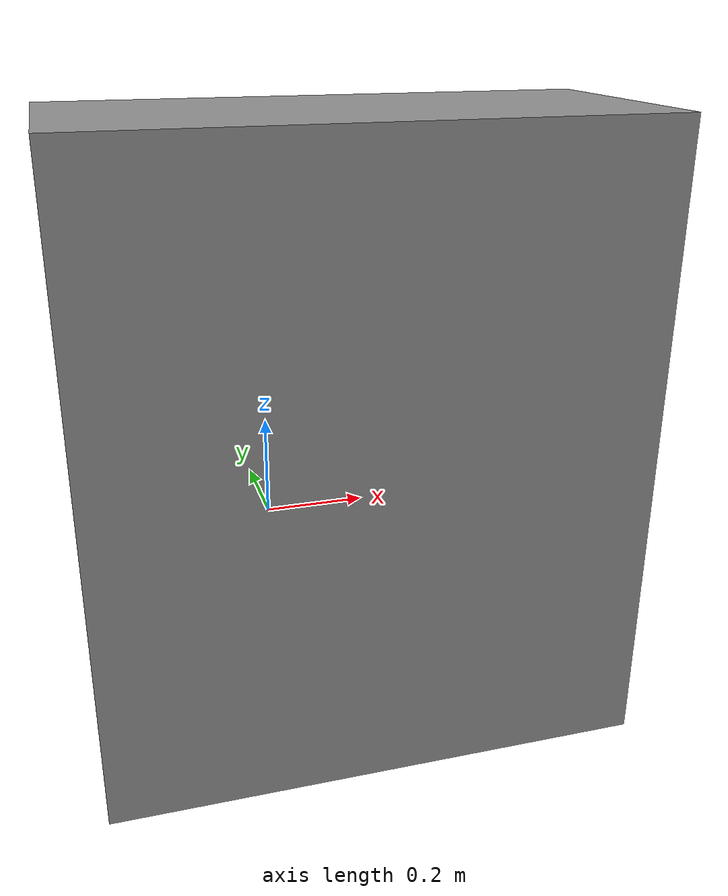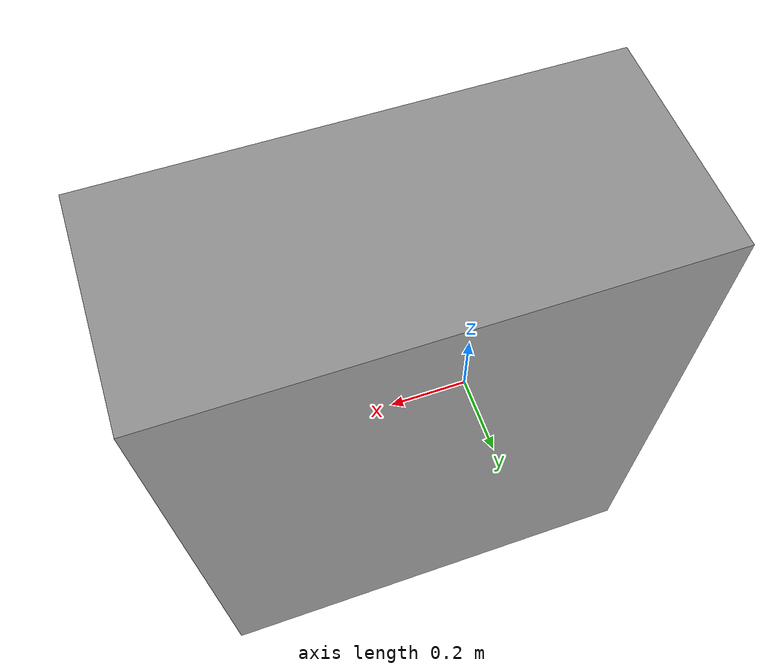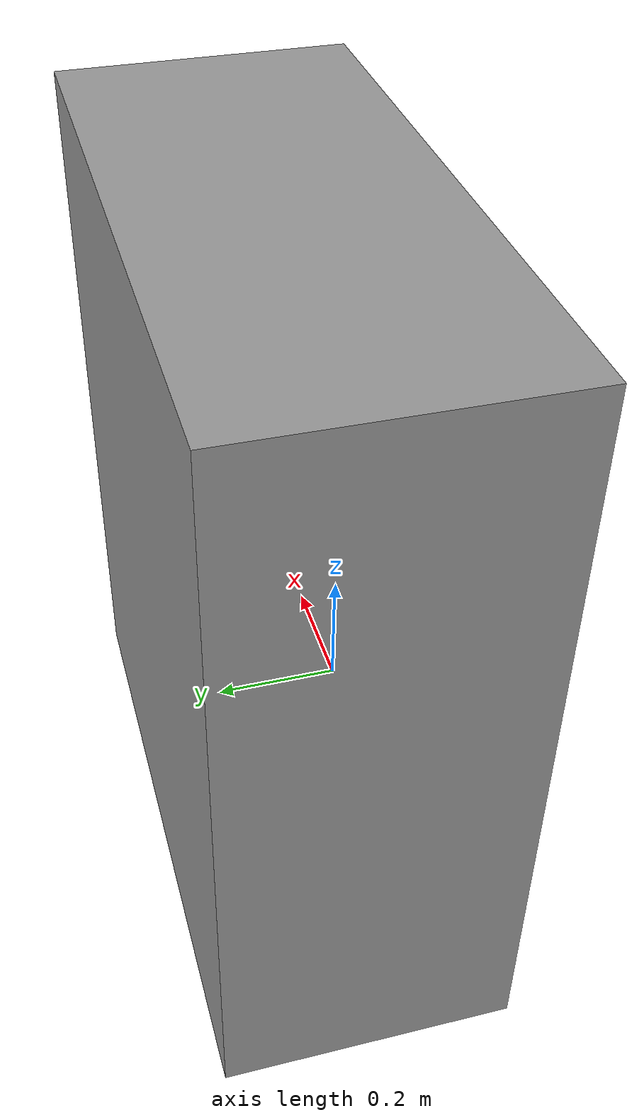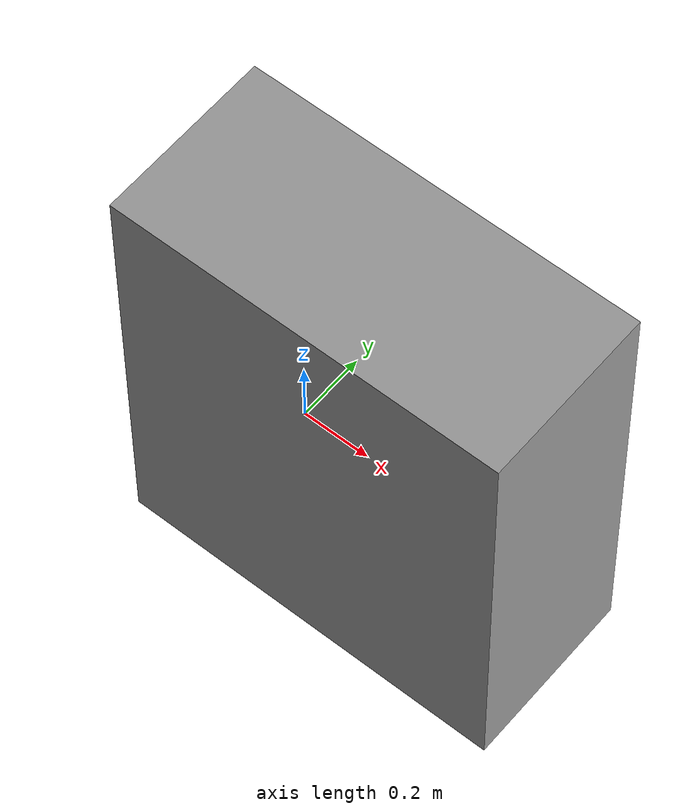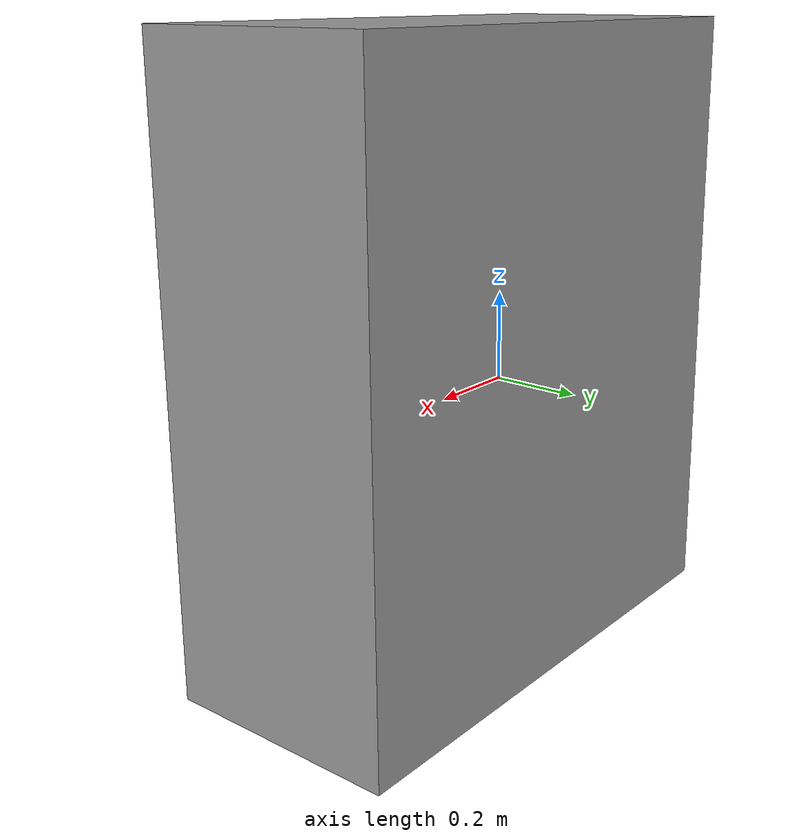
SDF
<?xml version='1.0'?>
<sdf version='1.6'>
  <model name='crate_0'>
    <link name='link'>
      <inertial>
        <mass>0.804287</mass>
        <inertia>
          <ixx>0.138555</ixx>
          <ixy>0</ixy>
          <ixz>0</ixz>
          <iyy>0.209043</iyy>
          <iyz>0</iyz>
          <izz>0.106977</izz>
        </inertia>
        <pose frame=''>0 0 0 0 -0 0</pose>
      </inertial>
      <self_collide>0</self_collide>
      <enable_wind>0</enable_wind>
      <kinematic>0</kinematic>
      <pose frame=''>0.186991 0.034424 0.127035 0 -0 0</pose>
      <visual name='visual'>
        <geometry>
          <box>
            <size>1.1506 0.52174 1.33979</size>
          </box>
        </geometry>
        <material>
          <script>
            <name>Gazebo/Grey</name>
            <uri>file://media/materials/scripts/gazebo.material</uri>
          </script>
          <emissive>0 0 0 1</emissive>
        </material>
        <pose frame=''>0 0 0 0 -0 0</pose>
        <transparency>0</transparency>
        <cast_shadows>1</cast_shadows>
      </visual>
      <collision name='collision'>
        <laser_retro>0</laser_retro>
        <max_contacts>10</max_contacts>
        <pose frame=''>0 0 0 0 -0 0</pose>
        <geometry>
          <box>
            <size>1.1506 0.52174 1.33979</size>
          </box>
        </geometry>
        <surface>
          <friction>
            <ode>
              <mu>1</mu>
              <mu2>1</mu2>
              <fdir1>0 0 0</fdir1>
              <slip1>0</slip1>
              <slip2>0</slip2>
            </ode>
            <torsional>
              <coefficient>1</coefficient>
              <patch_radius>0</patch_radius>
              <surface_radius>0</surface_radius>
              <use_patch_radius>1</use_patch_radius>
              <ode>
                <slip>0</slip>
              </ode>
            </torsional>
          </friction>
          <bounce>
            <restitution_coefficient>0</restitution_coefficient>
            <threshold>1e+06</threshold>
          </bounce>
          <contact>
            <collide_without_contact>0</collide_without_contact>
            <collide_without_contact_bitmask>1</collide_without_contact_bitmask>
            <collide_bitmask>1</collide_bitmask>
            <ode>
              <soft_cfm>0</soft_cfm>
              <soft_erp>0.2</soft_erp>
              <kp>1e+13</kp>
              <kd>1</kd>
              <max_vel>0.01</max_vel>
              <min_depth>0</min_depth>
            </ode>
            <bullet>
              <split_impulse>1</split_impulse>
              <split_impulse_penetration_threshold>-0.01</split_impulse_penetration_threshold>
              <soft_cfm>0</soft_cfm>
              <soft_erp>0.2</soft_erp>
              <kp>1e+13</kp>
              <kd>1</kd>
            </bullet>
          </contact>
        </surface>
      </collision>
    </link>
    <static>1</static>
    <allow_auto_disable>1</allow_auto_disable>
  </model>
</sdf>
